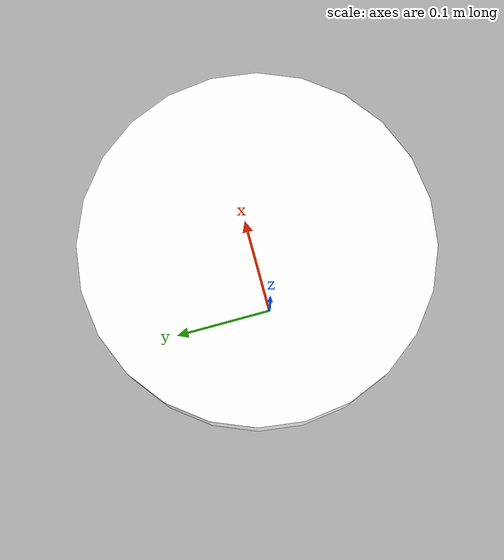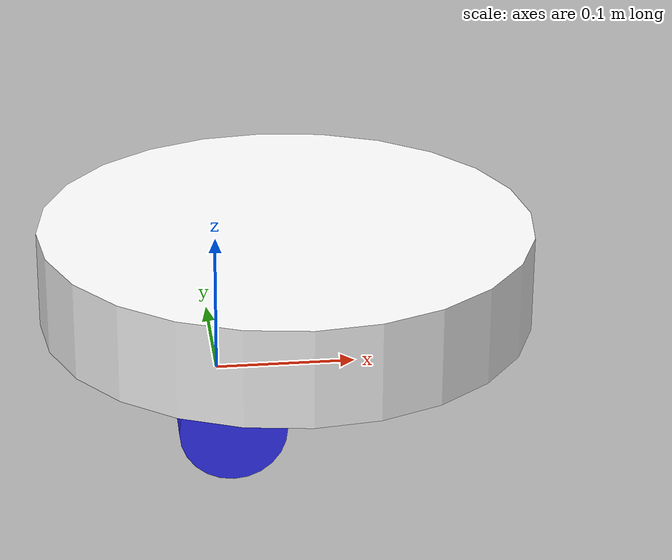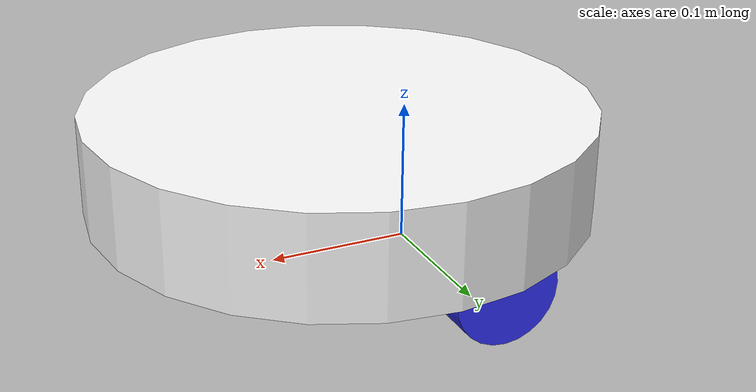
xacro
<?xml version="1.0"?>
<robot xmlns:xacro="http://www.ros.org/wiki/xacro">

    <xacro:include filename="inertial_macros.xacro"/>

    <material name="white">
        <color rgba="1 1 1 1"/>
    </material>

    <material name="orange">
        <color rgba="1 0.3 0.1 1"/>
    </material>

    <material name="blue">
        <color rgba="0.2 0.2 1 1"/>
    </material>

    <material name="black">
        <color rgba="0 0 0 1"/>
    </material>

    <!-- BASE LINK -->

    <link name="base_link">

    </link>

    <!-- CHASSIS LINK -->

    <joint name="chassis_joint" type="fixed">
        <parent link="base_link"/>
        <child link="chassis"/>
        <origin xyz="-0.1 0 0"/>
    </joint>

    <link name="chassis">
        <visual>
            <origin xyz="0.15 0 0.075"/>

            <geometry>
                <cylinder radius="0.175" length="0.070"/>
            </geometry>
            <material name="white"/>

        </visual>
        <collision>
            <origin xyz="0.15 0 0.075"/>

            <geometry>
                <cylinder radius="0.175" length="0.070"/>
            </geometry>
        </collision>
        <xacro:inertial_cylinder mass="0.5" radius="0.175" length="0.070">
            <origin xyz="0.175 0 0.070" rpy="0 0 0 "/>
        </xacro:inertial_cylinder>

    </link>

    <gazebo reference="chassis">
        <material>Gazebo/White</material>
    </gazebo>

    <!-- LEFT WHEEL -->

    <joint name="left_wheel_joint" type="continuous">
        <parent link="base_link"/>
        <child link="left_wheel"/>
        <origin xyz="0 0.125 0.025" rpy="-${pi/2} 0 0" />
        <axis xyz="0 0 1"/>
    </joint>

    <link name="left_wheel">
        <visual>
            <geometry>
                <cylinder radius="0.036" length="0.04"/>
            </geometry>
            <material name="blue"/>
        </visual>
        <collision>
            <geometry>
                <cylinder radius="0.036" length="0.04"/>
            </geometry>

        </collision>
        <xacro:inertial_cylinder mass="0.1" length="0.04" radius="0.036">
            <origin xyz="0 0 0" rpy="0 0 0"/>
        </xacro:inertial_cylinder>
    </link>

    <gazebo reference="left_wheel">
        <material>Gazebo/Blue</material>
    </gazebo>

    <!-- RIGHT WHEEL -->

    <joint name="right_wheel_joint" type="continuous">
        <parent link="base_link"/>
        <child link="right_wheel"/>
        <origin xyz="0 -0.125 0.025" rpy="${pi/2} 0 0" />
        <axis xyz="0 0 -1"/>
    </joint>

    <link name="right_wheel">
        <visual>
            <geometry>
                <cylinder radius="0.036" length="0.04"/>
            </geometry>
            <material name="blue"/>
        </visual>
        <collision>
            <geometry>
                <cylinder radius="0.036" length="0.04"/>
            </geometry>

        </collision>
        <xacro:inertial_cylinder mass="0.1" length="0.04" radius="0.036">
            <origin xyz="0 0 0" rpy="0 0 0"/>
        </xacro:inertial_cylinder>
    </link>

    <gazebo reference="right_wheel">
        <material>Gazebo/Blue</material>
    </gazebo>

    <!-- CASTOR WHEEL LINK -->

    <joint name="caster_wheel_joint" type="fixed">
        <parent link="chassis"/>
        <child link="caster_wheel"/>
        <origin xyz="0.24 0 0.025"/>
    </joint>

    <link name="caster_wheel">
        <visual>
            <geometry>
                <sphere radius="0.036"/>
            </geometry>
            <material name="blue"/>
        </visual>
        <collision>
            <geometry>
                <sphere radius="0.036"/>
            </geometry>
        </collision>
        <xacro:inertial_sphere mass="0.1" radius="0.036">
            <origin xyz="0 0 0" rpy="0 0 0"/>
        </xacro:inertial_sphere>

    </link>

    <gazebo reference="caster_wheel">
        <material>Gazebo/Blue</material>
        <mu1 value="0.001"/>
        <mu2 value="0.001"/>

    </gazebo>

</robot>
